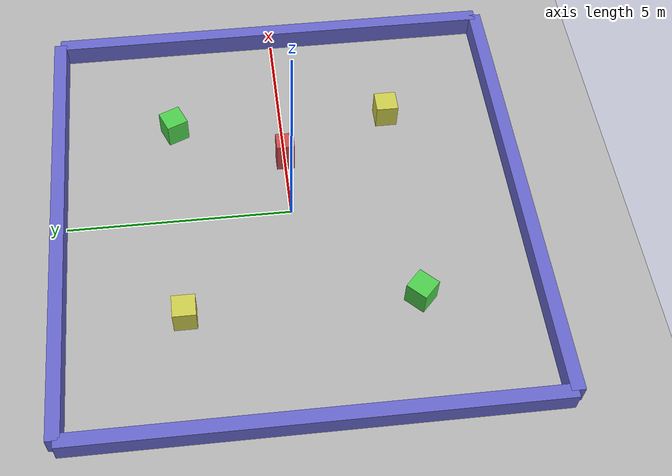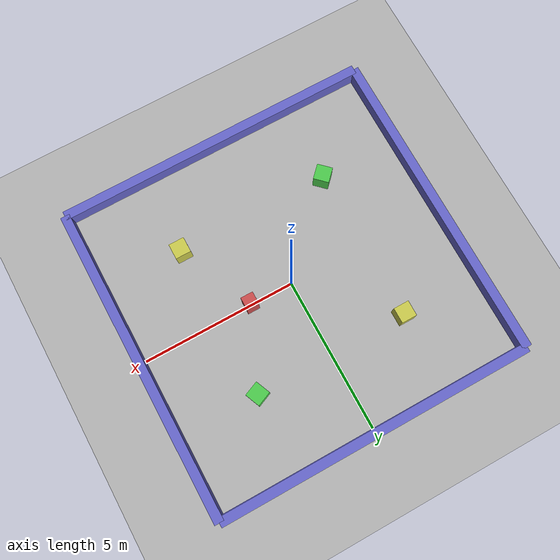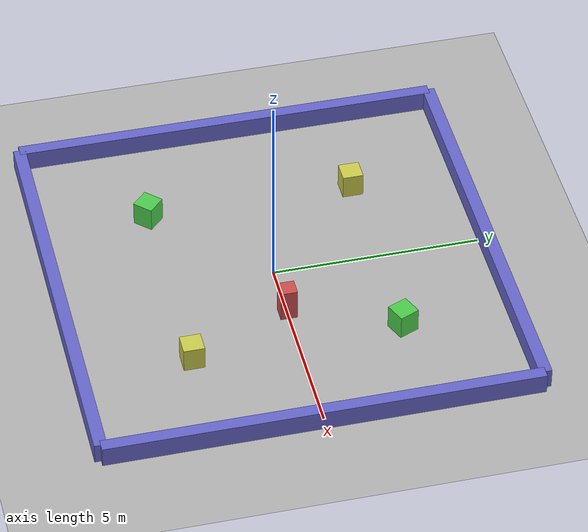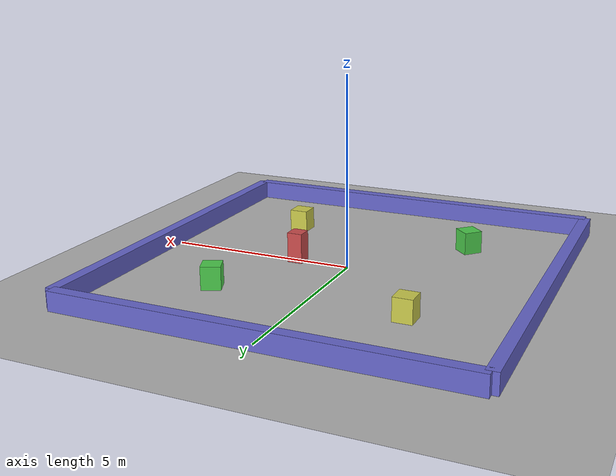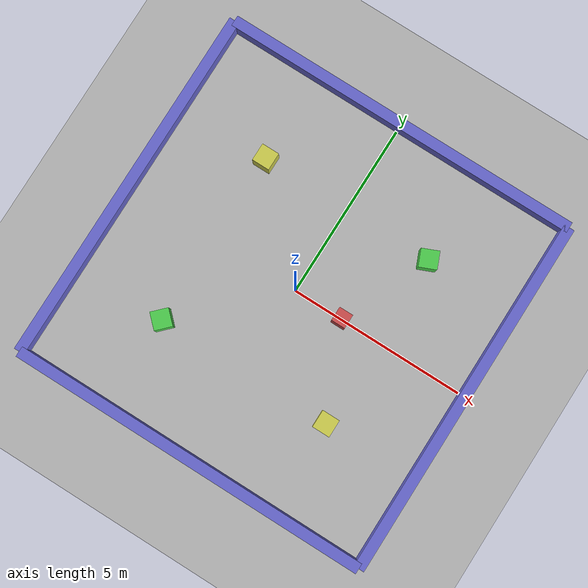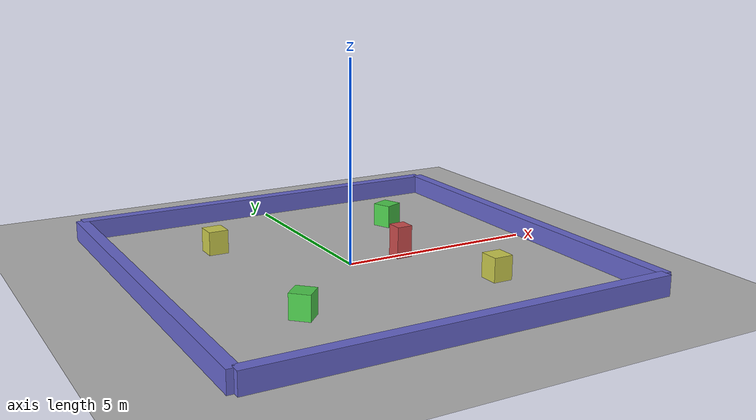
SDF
<sdf version='1.9'>
  <world name='test_arena'>
    <plugin name='ignition::gazebo::systems::Physics' filename='ignition-gazebo-physics-system'/>
    <plugin name='ignition::gazebo::systems::UserCommands' filename='ignition-gazebo-user-commands-system'/>
    <plugin name='ignition::gazebo::systems::SceneBroadcaster' filename='ignition-gazebo-scene-broadcaster-system'/>
    <plugin name='ignition::gazebo::systems::Sensors' filename='ignition-gazebo-sensors-system'>
      <render_engine>ogre2</render_engine>
    </plugin>
    <gravity>0 0 -9.8</gravity>
    <magnetic_field>6e-06 2.3e-05 -4.2e-05</magnetic_field>
    <atmosphere type='adiabatic'/>
    <physics type='ode'>
      <max_step_size>0.001</max_step_size>
      <real_time_factor>1</real_time_factor>
      <real_time_update_rate>1000</real_time_update_rate>
    </physics>
    <scene>
      <ambient>0.4 0.4 0.4 1</ambient>
      <background>0.7 0.7 0.7 1</background>
      <shadows>true</shadows>
    </scene>
    <model name='ground_plane'>
      <static>true</static>
      <link name='link'>
        <collision name='surface'>
          <geometry>
            <plane>
              <normal>0 0 1</normal>
              <size>12 12</size>
            </plane>
          </geometry>
          <surface>
            <friction>
              <ode/>
            </friction>
            <bounce/>
            <contact/>
          </surface>
        </collision>
        <visual name='surface'>
          <geometry>
            <plane>
              <normal>0 0 1</normal>
              <size>12 12</size>
            </plane>
          </geometry>
          <material>
            <ambient>0.7 0.7 0.7 1</ambient>
            <diffuse>0.7 0.7 0.7 1</diffuse>
          </material>
        </visual>
        <pose>0 0 0 0 -0 0</pose>
        <inertial>
          <pose>0 0 0 0 -0 0</pose>
          <mass>1</mass>
          <inertia>
            <ixx>1</ixx>
            <ixy>0</ixy>
            <ixz>0</ixz>
            <iyy>1</iyy>
            <iyz>0</iyz>
            <izz>1</izz>
          </inertia>
        </inertial>
        <enable_wind>false</enable_wind>
      </link>
      <pose>0 0 0 0 -0 0</pose>
      <self_collide>false</self_collide>
    </model>
    <model name='wall_north'>
      <static>true</static>
      <pose>0 5.15 0.25 0 -0 0</pose>
      <link name='link'>
        <collision name='col'>
          <geometry>
            <box>
              <size>10.3 0.3 0.5</size>
            </box>
          </geometry>
          <surface>
            <friction>
              <ode/>
            </friction>
            <bounce/>
            <contact/>
          </surface>
        </collision>
        <visual name='vis'>
          <geometry>
            <box>
              <size>10.3 0.3 0.5</size>
            </box>
          </geometry>
          <material>
            <ambient>0.4 0.4 0.8 1</ambient>
            <diffuse>0.4 0.4 0.8 1</diffuse>
          </material>
        </visual>
        <pose>0 0 0 0 -0 0</pose>
        <inertial>
          <pose>0 0 0 0 -0 0</pose>
          <mass>1</mass>
          <inertia>
            <ixx>1</ixx>
            <ixy>0</ixy>
            <ixz>0</ixz>
            <iyy>1</iyy>
            <iyz>0</iyz>
            <izz>1</izz>
          </inertia>
        </inertial>
        <enable_wind>false</enable_wind>
      </link>
      <self_collide>false</self_collide>
    </model>
    <model name='wall_south'>
      <static>true</static>
      <pose>0 -5.15 0.25 0 -0 0</pose>
      <link name='link'>
        <collision name='col'>
          <geometry>
            <box>
              <size>10.3 0.3 0.5</size>
            </box>
          </geometry>
          <surface>
            <friction>
              <ode/>
            </friction>
            <bounce/>
            <contact/>
          </surface>
        </collision>
        <visual name='vis'>
          <geometry>
            <box>
              <size>10.3 0.3 0.5</size>
            </box>
          </geometry>
          <material>
            <ambient>0.4 0.4 0.8 1</ambient>
            <diffuse>0.4 0.4 0.8 1</diffuse>
          </material>
        </visual>
        <pose>0 0 0 0 -0 0</pose>
        <inertial>
          <pose>0 0 0 0 -0 0</pose>
          <mass>1</mass>
          <inertia>
            <ixx>1</ixx>
            <ixy>0</ixy>
            <ixz>0</ixz>
            <iyy>1</iyy>
            <iyz>0</iyz>
            <izz>1</izz>
          </inertia>
        </inertial>
        <enable_wind>false</enable_wind>
      </link>
      <self_collide>false</self_collide>
    </model>
    <model name='wall_east'>
      <static>true</static>
      <pose>5.15 0 0.25 0 -0 0</pose>
      <link name='link'>
        <collision name='col'>
          <geometry>
            <box>
              <size>0.3 10.3 0.5</size>
            </box>
          </geometry>
          <surface>
            <friction>
              <ode/>
            </friction>
            <bounce/>
            <contact/>
          </surface>
        </collision>
        <visual name='vis'>
          <geometry>
            <box>
              <size>0.3 10.3 0.5</size>
            </box>
          </geometry>
          <material>
            <ambient>0.4 0.4 0.8 1</ambient>
            <diffuse>0.4 0.4 0.8 1</diffuse>
          </material>
        </visual>
        <pose>0 0 0 0 -0 0</pose>
        <inertial>
          <pose>0 0 0 0 -0 0</pose>
          <mass>1</mass>
          <inertia>
            <ixx>1</ixx>
            <ixy>0</ixy>
            <ixz>0</ixz>
            <iyy>1</iyy>
            <iyz>0</iyz>
            <izz>1</izz>
          </inertia>
        </inertial>
        <enable_wind>false</enable_wind>
      </link>
      <self_collide>false</self_collide>
    </model>
    <model name='wall_west'>
      <static>true</static>
      <pose>-5.15 0 0.25 0 -0 0</pose>
      <link name='link'>
        <collision name='col'>
          <geometry>
            <box>
              <size>0.3 10.3 0.5</size>
            </box>
          </geometry>
          <surface>
            <friction>
              <ode/>
            </friction>
            <bounce/>
            <contact/>
          </surface>
        </collision>
        <visual name='vis'>
          <geometry>
            <box>
              <size>0.3 10.3 0.5</size>
            </box>
          </geometry>
          <material>
            <ambient>0.4 0.4 0.8 1</ambient>
            <diffuse>0.4 0.4 0.8 1</diffuse>
          </material>
        </visual>
        <pose>0 0 0 0 -0 0</pose>
        <inertial>
          <pose>0 0 0 0 -0 0</pose>
          <mass>1</mass>
          <inertia>
            <ixx>1</ixx>
            <ixy>0</ixy>
            <ixz>0</ixz>
            <iyy>1</iyy>
            <iyz>0</iyz>
            <izz>1</izz>
          </inertia>
        </inertial>
        <enable_wind>false</enable_wind>
      </link>
      <self_collide>false</self_collide>
    </model>
    <model name='pillar_centre'>
      <static>true</static>
      <pose>1.4107 0 0.4 0 -0 0</pose>
      <link name='link'>
        <collision name='col'>
          <geometry>
            <box>
              <size>0.4 0.4 0.8</size>
            </box>
          </geometry>
          <surface>
            <friction>
              <ode/>
            </friction>
            <bounce/>
            <contact/>
          </surface>
        </collision>
        <visual name='vis'>
          <geometry>
            <box>
              <size>0.4 0.4 0.8</size>
            </box>
          </geometry>
          <material>
            <ambient>0.8 0.3 0.3 1</ambient>
            <diffuse>0.8 0.3 0.3 1</diffuse>
          </material>
        </visual>
        <pose>0 0 0 0 -0 0</pose>
        <inertial>
          <pose>0 0 0 0 -0 0</pose>
          <mass>1</mass>
          <inertia>
            <ixx>1</ixx>
            <ixy>0</ixy>
            <ixz>0</ixz>
            <iyy>1</iyy>
            <iyz>0</iyz>
            <izz>1</izz>
          </inertia>
        </inertial>
        <enable_wind>false</enable_wind>
      </link>
      <self_collide>false</self_collide>
    </model>
    <model name='box_ne'>
      <static>true</static>
      <pose>2.5 2.5 0.3 0 -0 0.4</pose>
      <link name='link'>
        <collision name='col'>
          <geometry>
            <box>
              <size>0.5 0.5 0.6</size>
            </box>
          </geometry>
          <surface>
            <friction>
              <ode/>
            </friction>
            <bounce/>
            <contact/>
          </surface>
        </collision>
        <visual name='vis'>
          <geometry>
            <box>
              <size>0.5 0.5 0.6</size>
            </box>
          </geometry>
          <material>
            <ambient>0.3 0.8 0.3 1</ambient>
            <diffuse>0.3 0.8 0.3 1</diffuse>
          </material>
        </visual>
        <pose>0 0 0 0 -0 0</pose>
        <inertial>
          <pose>0 0 0 0 -0 0</pose>
          <mass>1</mass>
          <inertia>
            <ixx>1</ixx>
            <ixy>0</ixy>
            <ixz>0</ixz>
            <iyy>1</iyy>
            <iyz>0</iyz>
            <izz>1</izz>
          </inertia>
        </inertial>
        <enable_wind>false</enable_wind>
      </link>
      <self_collide>false</self_collide>
    </model>
    <model name='box_sw'>
      <static>true</static>
      <pose>-2.5 -2.5 0.3 0 -0 0.8</pose>
      <link name='link'>
        <collision name='col'>
          <geometry>
            <box>
              <size>0.5 0.5 0.6</size>
            </box>
          </geometry>
          <surface>
            <friction>
              <ode/>
            </friction>
            <bounce/>
            <contact/>
          </surface>
        </collision>
        <visual name='vis'>
          <geometry>
            <box>
              <size>0.5 0.5 0.6</size>
            </box>
          </geometry>
          <material>
            <ambient>0.3 0.8 0.3 1</ambient>
            <diffuse>0.3 0.8 0.3 1</diffuse>
          </material>
        </visual>
        <pose>0 0 0 0 -0 0</pose>
        <inertial>
          <pose>0 0 0 0 -0 0</pose>
          <mass>1</mass>
          <inertia>
            <ixx>1</ixx>
            <ixy>0</ixy>
            <ixz>0</ixz>
            <iyy>1</iyy>
            <iyz>0</iyz>
            <izz>1</izz>
          </inertia>
        </inertial>
        <enable_wind>false</enable_wind>
      </link>
      <self_collide>false</self_collide>
    </model>
    <model name='box_nw'>
      <static>true</static>
      <pose>-2.5 2.5 0.3 0 -0 0</pose>
      <link name='link'>
        <collision name='col'>
          <geometry>
            <box>
              <size>0.5 0.5 0.6</size>
            </box>
          </geometry>
          <surface>
            <friction>
              <ode/>
            </friction>
            <bounce/>
            <contact/>
          </surface>
        </collision>
        <visual name='vis'>
          <geometry>
            <box>
              <size>0.5 0.5 0.6</size>
            </box>
          </geometry>
          <material>
            <ambient>0.8 0.8 0.3 1</ambient>
            <diffuse>0.8 0.8 0.3 1</diffuse>
          </material>
        </visual>
        <pose>0 0 0 0 -0 0</pose>
        <inertial>
          <pose>0 0 0 0 -0 0</pose>
          <mass>1</mass>
          <inertia>
            <ixx>1</ixx>
            <ixy>0</ixy>
            <ixz>0</ixz>
            <iyy>1</iyy>
            <iyz>0</iyz>
            <izz>1</izz>
          </inertia>
        </inertial>
        <enable_wind>false</enable_wind>
      </link>
      <self_collide>false</self_collide>
    </model>
    <model name='box_se'>
      <static>true</static>
      <pose>2.5 -2.5 0.3 0 -0 0</pose>
      <link name='link'>
        <collision name='col'>
          <geometry>
            <box>
              <size>0.5 0.5 0.6</size>
            </box>
          </geometry>
          <surface>
            <friction>
              <ode/>
            </friction>
            <bounce/>
            <contact/>
          </surface>
        </collision>
        <visual name='vis'>
          <geometry>
            <box>
              <size>0.5 0.5 0.6</size>
            </box>
          </geometry>
          <material>
            <ambient>0.8 0.8 0.3 1</ambient>
            <diffuse>0.8 0.8 0.3 1</diffuse>
          </material>
        </visual>
        <pose>0 0 0 0 -0 0</pose>
        <inertial>
          <pose>0 0 0 0 -0 0</pose>
          <mass>1</mass>
          <inertia>
            <ixx>1</ixx>
            <ixy>0</ixy>
            <ixz>0</ixz>
            <iyy>1</iyy>
            <iyz>0</iyz>
            <izz>1</izz>
          </inertia>
        </inertial>
        <enable_wind>false</enable_wind>
      </link>
      <self_collide>false</self_collide>
    </model>

    <light name='sun' type='directional'>
      <pose>0 0 10 0 -0 0</pose>
      <cast_shadows>true</cast_shadows>
      <intensity>1</intensity>
      <direction>-0.5 0.1 -0.9</direction>
      <diffuse>0.8 0.8 0.8 1</diffuse>
      <specular>0.2 0.2 0.2 1</specular>
      <attenuation>
        <range>10</range>
        <linear>1</linear>
        <constant>1</constant>
        <quadratic>0</quadratic>
      </attenuation>
      <spot>
        <inner_angle>0</inner_angle>
        <outer_angle>0</outer_angle>
        <falloff>0</falloff>
      </spot>
    </light>
  </world>
</sdf>
